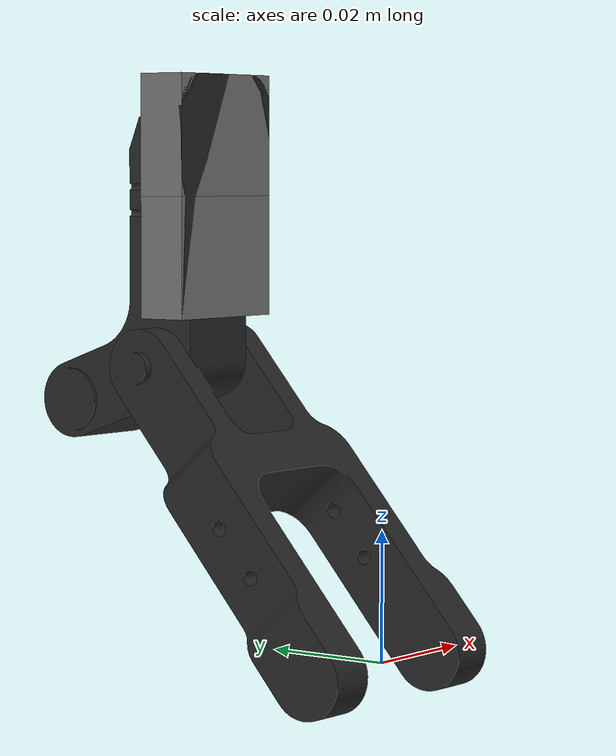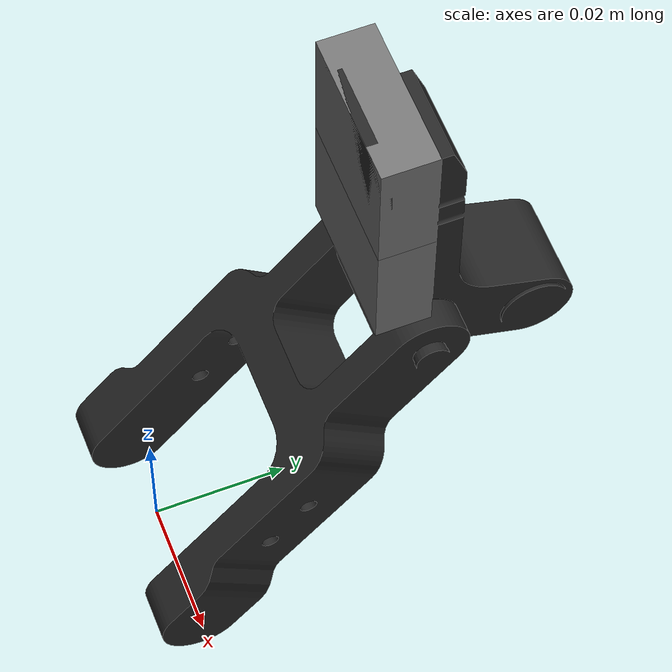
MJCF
<mujoco model="MuJoCo Model">
  <compiler angle="radian"/>

  <default>
    <mesh scale="0.001 0.001 0.001"/>
  </default>

  <asset>
    <material name="black" rgba="0.149 0.149 0.149 1"/>
    <mesh name="spring_link" file="../assets/spring_link.stl" scale="1 1 1"/>
    <mesh name="follower" file="../assets/follower.stl" scale="1 1 1"/>
    <mesh name="pad" file="../assets/pad.stl" scale="1 1 1"/>
    <mesh name="silicone_pad" file="../assets/silicone_pad.stl" scale="1 1 1"/>
  </asset>

  <worldbody>
    <body name="spring_link">
      <joint name="spring_link" pos="0 0 0" axis="1 0 0" springref="2.62" stiffness="0.05" range="-0.296706 0.8" armature="0.001" damping="0.00125"/>
      <geom type="mesh" contype="0" conaffinity="0" group="2" material="black" mesh="spring_link"/>
      <geom type="mesh" group="3" mesh="spring_link"/>
      <body name="follower" pos="0 0.055 0.0375">
        <joint name="follower" pos="0 -0.018 0.0065" axis="1 0 0" solreflimit="0.005" solimplimit="0.95 0.99 0.001 0 0" range="-0.872664 0.872664" armature="0.001"/>
        <geom type="mesh" contype="0" conaffinity="0" group="2" material="black" mesh="follower"/>
        <geom type="mesh" group="3" mesh="follower"/>
        <body name="pad" pos="0 -0.0189 0.01352">
          <geom name="pad_box1" size="0.011 0.004 0.009375" pos="0 -0.0026 0.028125" type="box" priority="1" friction="0.7 0 0" solref="0.004" solimp="0.95 0.99 0.001 0 0" mass="0" rgba="0.45 0.45 0.45 1"/>
          <geom name="pad_box2" size="0.011 0.004 0.009375" pos="0 -0.0026 0.009375" type="box" priority="1" friction="0.6 0 0" solref="0.004" solimp="0.95 0.99 0.001 0 0" mass="0" rgba="0.45 0.45 0.45 1"/>
          <body name="silicone_pad">
            <geom type="mesh" contype="0" conaffinity="0" group="2" material="black" mesh="silicone_pad"/>
          </body>
        </body>
      </body>
    </body>
  </worldbody>
</mujoco>
